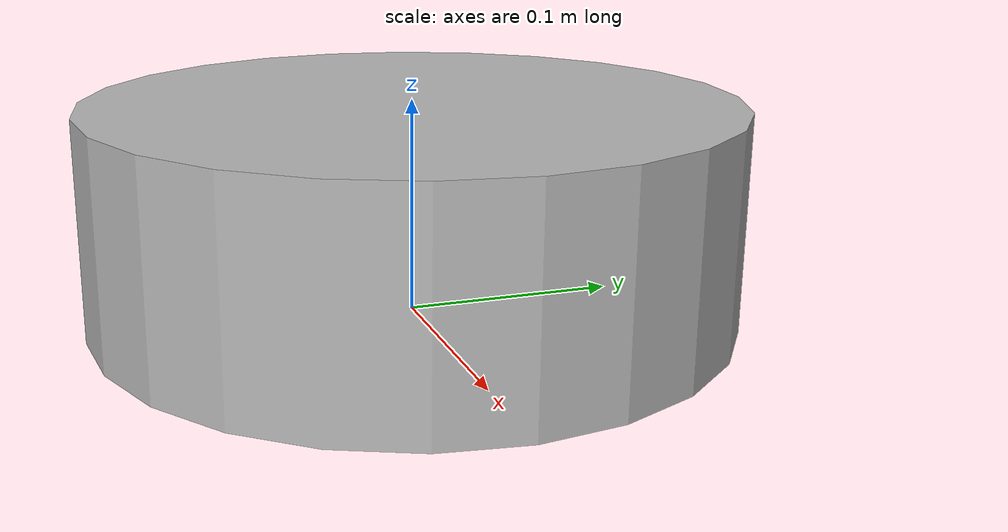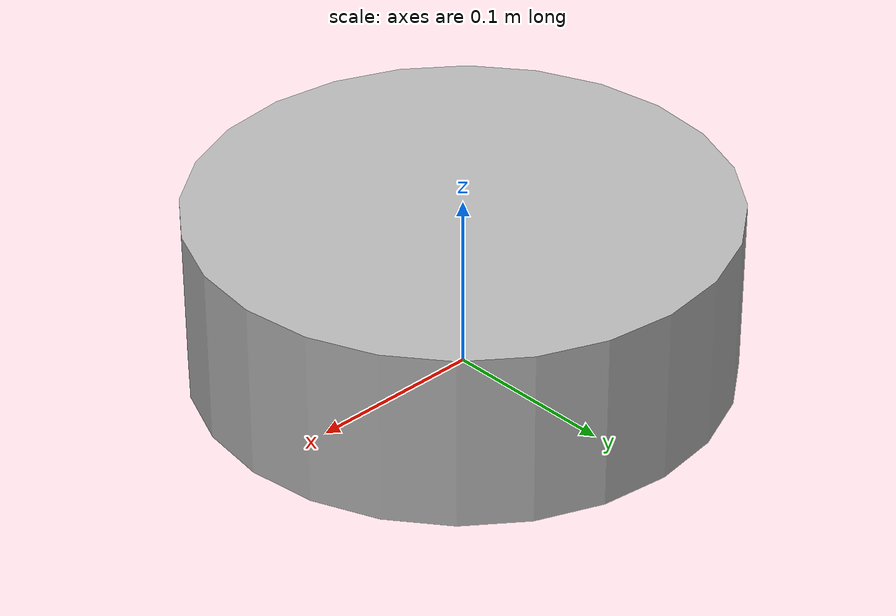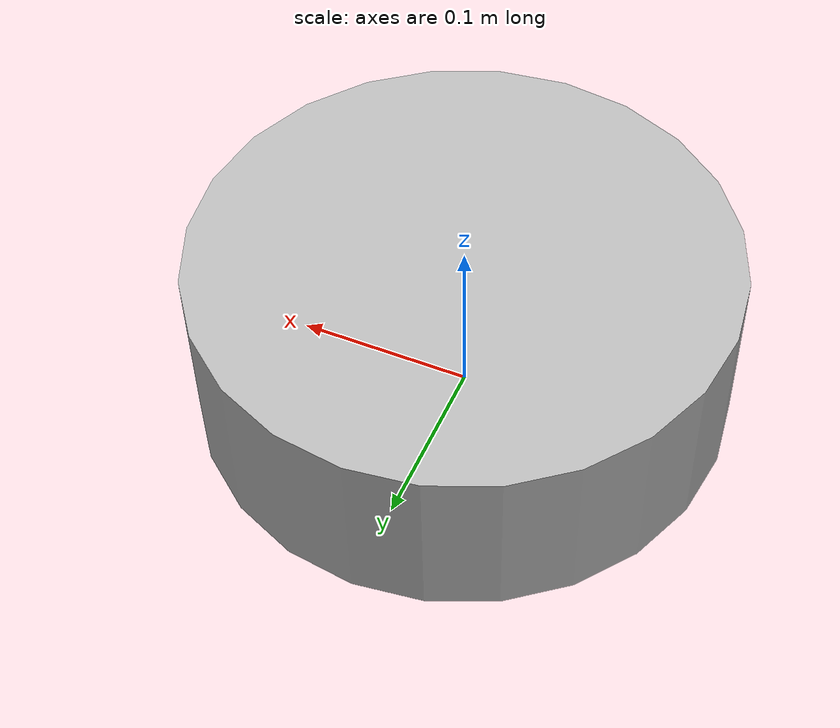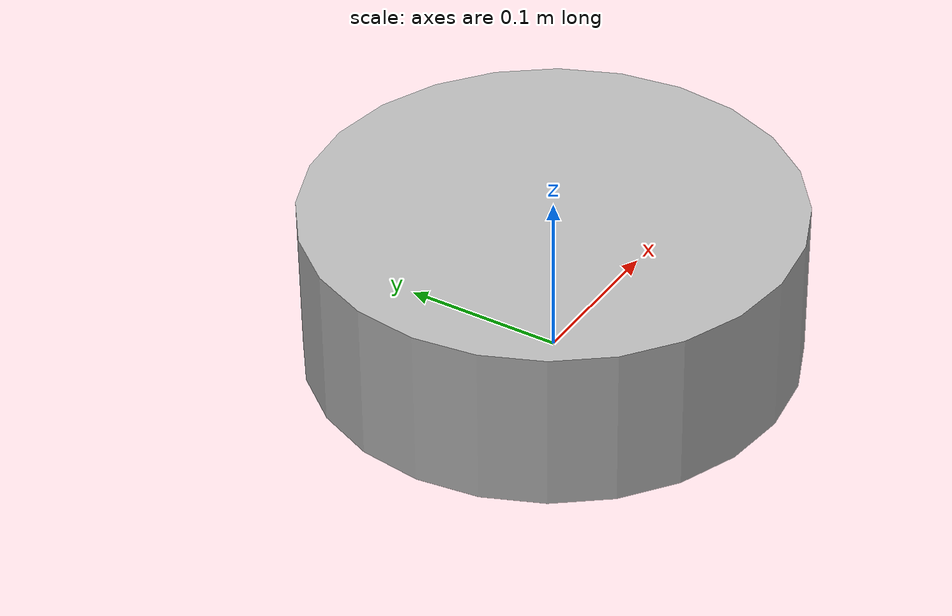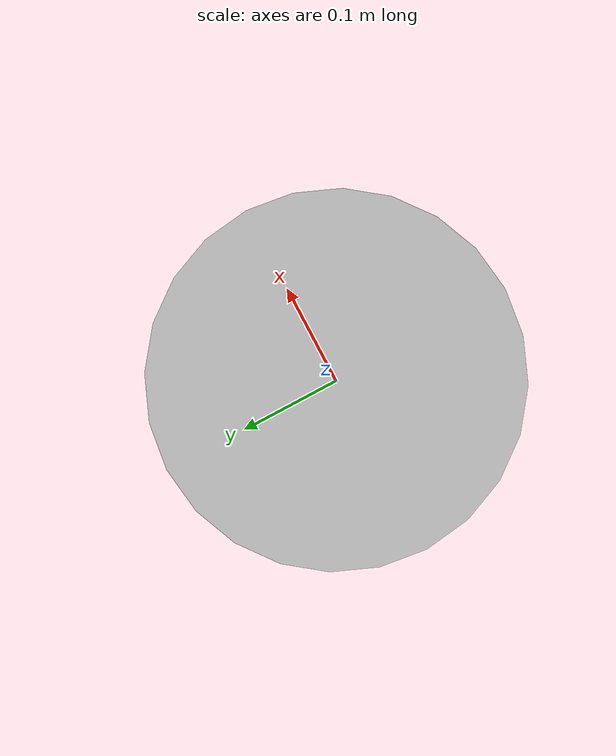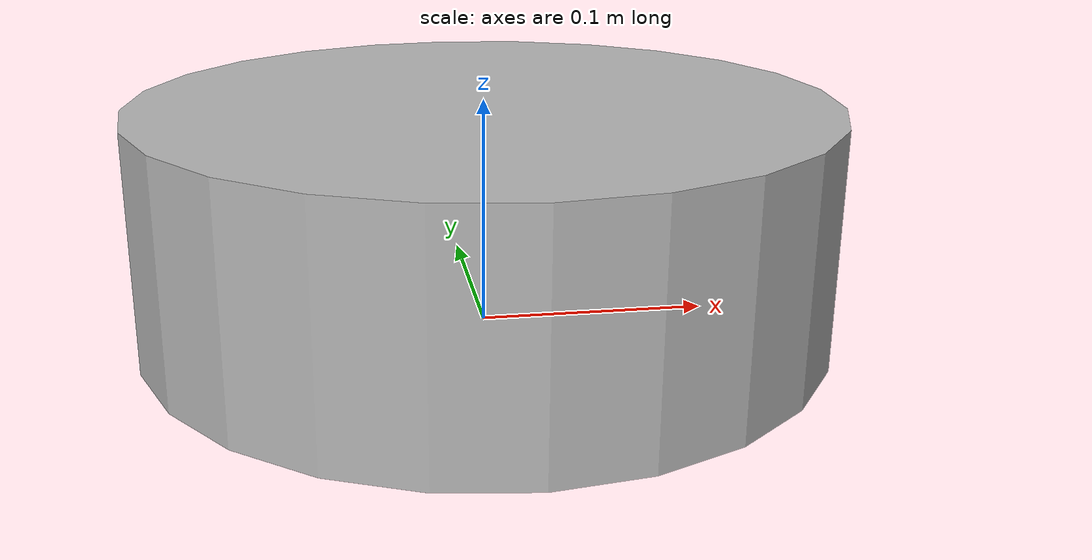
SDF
<?xml version="1.0" ?>
<sdf version="1.5">
  <model name="Simple_Camera">
    <link name="base_link">
      <inertial>
        <pose>0 0 0.05 0 0 0</pose>
        <inertia>
          <ixx>10</ixx>
          <ixy>0</ixy>
          <ixz>0</ixz>
          <iyy>10</iyy>
          <iyz>0</iyz>
          <izz>10</izz>
        </inertia>
        <mass>10</mass>
      </inertial>
      <collision name="collision">
        <pose>0 0 0.05 0 0 0</pose>
        <geometry>
          <cylinder>
            <radius>0.30</radius>
            <length>0.1</length>
          </cylinder>
        </geometry>
      </collision>
      <visual name="visual_base">
        <pose>0 0 0.05 0 0 0</pose>
        <geometry>
          <cylinder>
            <radius>0.15</radius>
            <length>0.1</length>
          </cylinder>
        </geometry>
      </visual>
      </link>
      <link name="camera_link">
      <pose>0 0 0.80 0 0 0</pose>
      <sensor name="camera" type="camera">
        <always_on>1</always_on>
        <update_rate>30</update_rate>
        <visualize>true</visualize>
        <camera>
          <horizontal_fov>1.047</horizontal_fov>
          <image>
            <width>640</width>
            <height>480</height>
            <format>BAYER_RGGB8</format>
          </image>
          <clip>
            <near>0.01</near>
            <far>40</far>
          </clip>
        </camera>
        <plugin name="camera_controller" filename="libgazebo_ros_camera.so">
          <alwaysOn>true</alwaysOn>
          <updateRate>0.0</updateRate>
          <cameraName>camera</cameraName>
          <imageTopicName>image_raw</imageTopicName>
          <cameraInfoTopicName>camera_info</cameraInfoTopicName>
          <frameName>camera_link</frameName>
          <hackBaseline>0.07</hackBaseline>
          <distortionK1>0.0</distortionK1>
          <distortionK2>0.0</distortionK2>
          <distortionK3>0.0</distortionK3>
          <distortionT1>0.0</distortionT1>
          <distortionT2>0.0</distortionT2>
        </plugin>
      </sensor>
    </link>
    <joint name="camera_joint" type="revolute">
      <parent>base_link</parent>
      <child>camera_link</child>
      <axis>
      <xyz>0 0 1</xyz>
      <limit>
        <upper>0</upper>
        <lower>0</lower>
      </limit>
  </axis>
    </joint>
    <plugin name="object_controller" filename="libgazebo_ros_planar_move.so">
      <commandTopic>cmd_vel</commandTopic>
      <odometryTopic>odom</odometryTopic>
      <odometryFrame>base_link</odometryFrame>
      <odometryRate>20.0</odometryRate>
      <robotBaseFrame>base_link</robotBaseFrame>
    </plugin>
    <plugin name="camera_imu" filename="libgazebo_ros_imu.so">
      <bodyName>camera_link</bodyName>
      <topicName>imu</topicName>
      <updateRate>100.0</updateRate>
    </plugin>
  </model>
</sdf>
